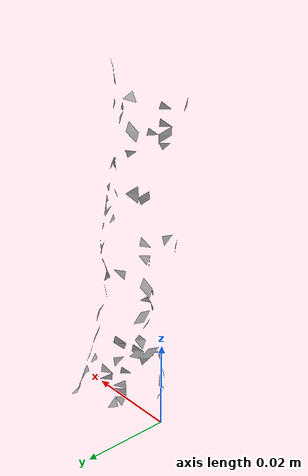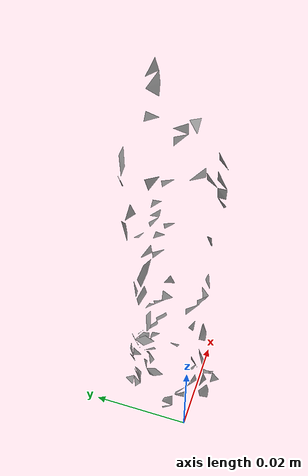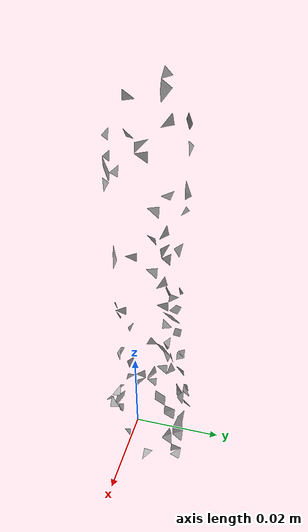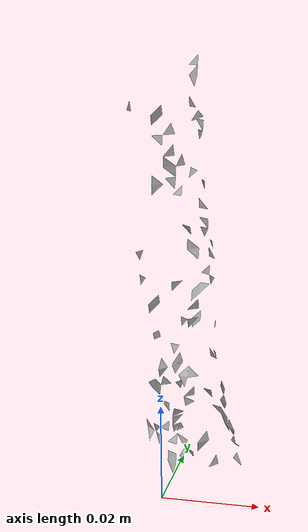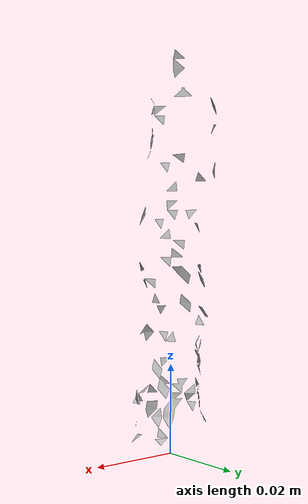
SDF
<?xml version='1.0'?>
<sdf version="1.4">
  <model name="small_marker">
    <static>false</static>
    <link name="link">
      <inertial>
        <pose>0.0032001725193334116 0.004681558579172993 0.006391496436420896 -0.020211277314552883 -0.6276743800198086 -1.9393642873010546</pose>
        <mass>9.949254477471e-06</mass>
        <inertia>
          <ixx>2.4084715561816793e-09</ixx>
          <ixy>-2.1002632740604218e-26</ixy>
          <ixz>-2.5849394142282115e-25</ixz>
          <iyy>1.3477104194998567e-09</iyy>
          <iyz>-3.004992069040296e-25</iyz>
          <izz>-7.936753546759862e-10</izz>
        </inertia>
      </inertial>
      <collision name="collision">
        <geometry>
          <mesh>
            <!-- Use a downsampled mesh for collisions -->
            <uri>model://041_small_marker/tsdf/textured.obj</uri>
          </mesh>
        </geometry>
        <surface>
      </surface>
      </collision>
      <visual name="visual">
        <geometry>
          <mesh>
            <uri>model://041_small_marker/tsdf/textured.obj</uri>
          </mesh>
        </geometry>
        <material>
          <script>
            <uri>model://041_small_marker/small_marker.material</uri>
            <name>small_marker</name>
          </script>
        </material>
      </visual>
    </link>
    <plugin name="ROSTFPublisher" filename="ROSRobotPosePublisherPlugin.so">
    </plugin>
  </model>
</sdf>
